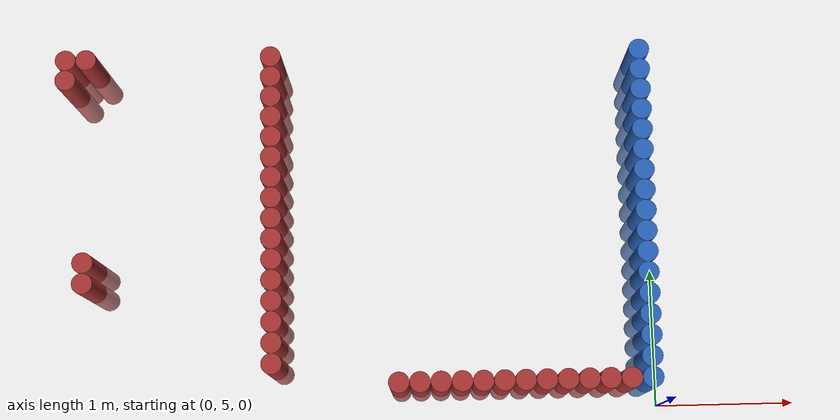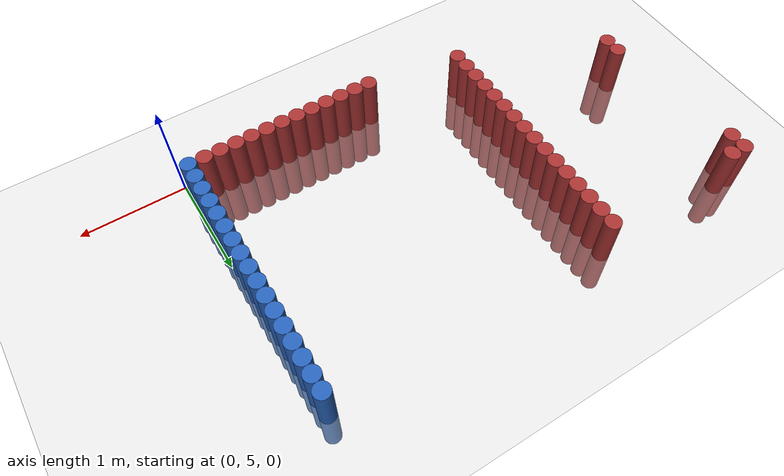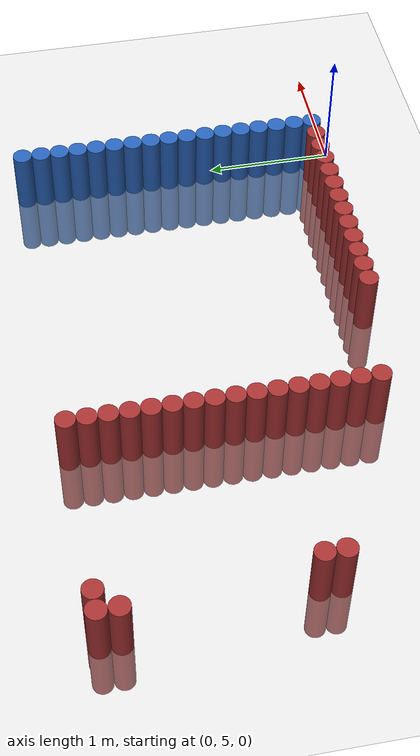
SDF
<sdf version="1.6">
 <world name="default">
  <model name="ground_plane">
   <static>1</static>
   <link name="link">
    <collision name="collision">
     <geometry><plane><normal>0 0 1</normal><size>100 100</size></plane></geometry>
     <surface><friction><ode><mu>100</mu><mu2>50</mu2></ode></friction></surface>
    </collision>
    <visual name="visual">
     <cast_shadows>0</cast_shadows>
     <geometry><plane><normal>0 0 1</normal><size>100 100</size></plane></geometry>
     <material>
      <script><uri>file://media/materials/scripts/gazebo.material</uri><name>Gazebo/Grey</name></script>
     </material>
    </visual>
   </link>
  </model>
  <model name="unit_cylinder_247">
   <static>1</static>
   <pose>-4.275000 7.425000 0.000000 0.000000 0.000000 0.000000</pose>
   <link name="link">
    <inertial>
     <mass>1</mass>
     <inertia><ixx>0.145833</ixx><ixy>0</ixy><ixz>0</ixz><iyy>0.145833</iyy><iyz>0</iyz><izz>0.125</izz></inertia>
    </inertial>
    <collision name="collision">
     <geometry><cylinder><radius>0.075000</radius><length>1</length></cylinder></geometry>
    </collision>
    <visual name="visual">
     <geometry><cylinder><radius>0.075000</radius><length>1</length></cylinder></geometry>
     <material>
      <ambient>0.648000 0.192000 0.192000 1</ambient>
      <diffuse>0.648000 0.192000 0.192000 1</diffuse>
     </material>
     <material>
      <script><name>Gazebo/Grey</name><uri>file://media/materials/scripts/gazebo.material</uri></script>
     </material>
    </visual>
   </link>
  </model>
  <model name="unit_cylinder_248">
   <static>1</static>
   <pose>-4.275000 7.575000 0.000000 0.000000 0.000000 0.000000</pose>
   <link name="link">
    <inertial>
     <mass>1</mass>
     <inertia><ixx>0.145833</ixx><ixy>0</ixy><ixz>0</ixz><iyy>0.145833</iyy><iyz>0</iyz><izz>0.125</izz></inertia>
    </inertial>
    <collision name="collision">
     <geometry><cylinder><radius>0.075000</radius><length>1</length></cylinder></geometry>
    </collision>
    <visual name="visual">
     <geometry><cylinder><radius>0.075000</radius><length>1</length></cylinder></geometry>
     <material>
      <ambient>0.648000 0.192000 0.192000 1</ambient>
      <diffuse>0.648000 0.192000 0.192000 1</diffuse>
     </material>
     <material>
      <script><name>Gazebo/Grey</name><uri>file://media/materials/scripts/gazebo.material</uri></script>
     </material>
    </visual>
   </link>
  </model>
  <model name="unit_cylinder_250">
   <static>1</static>
   <pose>-4.125000 5.925000 0.000000 0.000000 0.000000 0.000000</pose>
   <link name="link">
    <inertial>
     <mass>1</mass>
     <inertia><ixx>0.145833</ixx><ixy>0</ixy><ixz>0</ixz><iyy>0.145833</iyy><iyz>0</iyz><izz>0.125</izz></inertia>
    </inertial>
    <collision name="collision">
     <geometry><cylinder><radius>0.075000</radius><length>1</length></cylinder></geometry>
    </collision>
    <visual name="visual">
     <geometry><cylinder><radius>0.075000</radius><length>1</length></cylinder></geometry>
     <material>
      <ambient>0.648000 0.192000 0.192000 1</ambient>
      <diffuse>0.648000 0.192000 0.192000 1</diffuse>
     </material>
     <material>
      <script><name>Gazebo/Grey</name><uri>file://media/materials/scripts/gazebo.material</uri></script>
     </material>
    </visual>
   </link>
  </model>
  <model name="unit_cylinder_251">
   <static>1</static>
   <pose>-4.125000 6.075000 0.000000 0.000000 0.000000 0.000000</pose>
   <link name="link">
    <inertial>
     <mass>1</mass>
     <inertia><ixx>0.145833</ixx><ixy>0</ixy><ixz>0</ixz><iyy>0.145833</iyy><iyz>0</iyz><izz>0.125</izz></inertia>
    </inertial>
    <collision name="collision">
     <geometry><cylinder><radius>0.075000</radius><length>1</length></cylinder></geometry>
    </collision>
    <visual name="visual">
     <geometry><cylinder><radius>0.075000</radius><length>1</length></cylinder></geometry>
     <material>
      <ambient>0.648000 0.192000 0.192000 1</ambient>
      <diffuse>0.648000 0.192000 0.192000 1</diffuse>
     </material>
     <material>
      <script><name>Gazebo/Grey</name><uri>file://media/materials/scripts/gazebo.material</uri></script>
     </material>
    </visual>
   </link>
  </model>
  <model name="unit_cylinder_252">
   <static>1</static>
   <pose>-4.125000 7.575000 0.000000 0.000000 0.000000 0.000000</pose>
   <link name="link">
    <inertial>
     <mass>1</mass>
     <inertia><ixx>0.145833</ixx><ixy>0</ixy><ixz>0</ixz><iyy>0.145833</iyy><iyz>0</iyz><izz>0.125</izz></inertia>
    </inertial>
    <collision name="collision">
     <geometry><cylinder><radius>0.075000</radius><length>1</length></cylinder></geometry>
    </collision>
    <visual name="visual">
     <geometry><cylinder><radius>0.075000</radius><length>1</length></cylinder></geometry>
     <material>
      <ambient>0.648000 0.192000 0.192000 1</ambient>
      <diffuse>0.648000 0.192000 0.192000 1</diffuse>
     </material>
     <material>
      <script><name>Gazebo/Grey</name><uri>file://media/materials/scripts/gazebo.material</uri></script>
     </material>
    </visual>
   </link>
  </model>
  <model name="unit_cylinder_263">
   <static>1</static>
   <pose>-2.775000 5.325000 0.000000 0.000000 0.000000 0.000000</pose>
   <link name="link">
    <inertial>
     <mass>1</mass>
     <inertia><ixx>0.145833</ixx><ixy>0</ixy><ixz>0</ixz><iyy>0.145833</iyy><iyz>0</iyz><izz>0.125</izz></inertia>
    </inertial>
    <collision name="collision">
     <geometry><cylinder><radius>0.075000</radius><length>1</length></cylinder></geometry>
    </collision>
    <visual name="visual">
     <geometry><cylinder><radius>0.075000</radius><length>1</length></cylinder></geometry>
     <material>
      <ambient>0.648000 0.192000 0.192000 1</ambient>
      <diffuse>0.648000 0.192000 0.192000 1</diffuse>
     </material>
     <material>
      <script><name>Gazebo/Grey</name><uri>file://media/materials/scripts/gazebo.material</uri></script>
     </material>
    </visual>
   </link>
  </model>
  <model name="unit_cylinder_264">
   <static>1</static>
   <pose>-2.775000 5.475000 0.000000 0.000000 0.000000 0.000000</pose>
   <link name="link">
    <inertial>
     <mass>1</mass>
     <inertia><ixx>0.145833</ixx><ixy>0</ixy><ixz>0</ixz><iyy>0.145833</iyy><iyz>0</iyz><izz>0.125</izz></inertia>
    </inertial>
    <collision name="collision">
     <geometry><cylinder><radius>0.075000</radius><length>1</length></cylinder></geometry>
    </collision>
    <visual name="visual">
     <geometry><cylinder><radius>0.075000</radius><length>1</length></cylinder></geometry>
     <material>
      <ambient>0.648000 0.192000 0.192000 1</ambient>
      <diffuse>0.648000 0.192000 0.192000 1</diffuse>
     </material>
     <material>
      <script><name>Gazebo/Grey</name><uri>file://media/materials/scripts/gazebo.material</uri></script>
     </material>
    </visual>
   </link>
  </model>
  <model name="unit_cylinder_265">
   <static>1</static>
   <pose>-2.775000 5.625000 0.000000 0.000000 0.000000 0.000000</pose>
   <link name="link">
    <inertial>
     <mass>1</mass>
     <inertia><ixx>0.145833</ixx><ixy>0</ixy><ixz>0</ixz><iyy>0.145833</iyy><iyz>0</iyz><izz>0.125</izz></inertia>
    </inertial>
    <collision name="collision">
     <geometry><cylinder><radius>0.075000</radius><length>1</length></cylinder></geometry>
    </collision>
    <visual name="visual">
     <geometry><cylinder><radius>0.075000</radius><length>1</length></cylinder></geometry>
     <material>
      <ambient>0.648000 0.192000 0.192000 1</ambient>
      <diffuse>0.648000 0.192000 0.192000 1</diffuse>
     </material>
     <material>
      <script><name>Gazebo/Grey</name><uri>file://media/materials/scripts/gazebo.material</uri></script>
     </material>
    </visual>
   </link>
  </model>
  <model name="unit_cylinder_266">
   <static>1</static>
   <pose>-2.775000 5.775000 0.000000 0.000000 0.000000 0.000000</pose>
   <link name="link">
    <inertial>
     <mass>1</mass>
     <inertia><ixx>0.145833</ixx><ixy>0</ixy><ixz>0</ixz><iyy>0.145833</iyy><iyz>0</iyz><izz>0.125</izz></inertia>
    </inertial>
    <collision name="collision">
     <geometry><cylinder><radius>0.075000</radius><length>1</length></cylinder></geometry>
    </collision>
    <visual name="visual">
     <geometry><cylinder><radius>0.075000</radius><length>1</length></cylinder></geometry>
     <material>
      <ambient>0.648000 0.192000 0.192000 1</ambient>
      <diffuse>0.648000 0.192000 0.192000 1</diffuse>
     </material>
     <material>
      <script><name>Gazebo/Grey</name><uri>file://media/materials/scripts/gazebo.material</uri></script>
     </material>
    </visual>
   </link>
  </model>
  <model name="unit_cylinder_267">
   <static>1</static>
   <pose>-2.775000 5.925000 0.000000 0.000000 0.000000 0.000000</pose>
   <link name="link">
    <inertial>
     <mass>1</mass>
     <inertia><ixx>0.145833</ixx><ixy>0</ixy><ixz>0</ixz><iyy>0.145833</iyy><iyz>0</iyz><izz>0.125</izz></inertia>
    </inertial>
    <collision name="collision">
     <geometry><cylinder><radius>0.075000</radius><length>1</length></cylinder></geometry>
    </collision>
    <visual name="visual">
     <geometry><cylinder><radius>0.075000</radius><length>1</length></cylinder></geometry>
     <material>
      <ambient>0.648000 0.192000 0.192000 1</ambient>
      <diffuse>0.648000 0.192000 0.192000 1</diffuse>
     </material>
     <material>
      <script><name>Gazebo/Grey</name><uri>file://media/materials/scripts/gazebo.material</uri></script>
     </material>
    </visual>
   </link>
  </model>
  <model name="unit_cylinder_268">
   <static>1</static>
   <pose>-2.775000 6.075000 0.000000 0.000000 0.000000 0.000000</pose>
   <link name="link">
    <inertial>
     <mass>1</mass>
     <inertia><ixx>0.145833</ixx><ixy>0</ixy><ixz>0</ixz><iyy>0.145833</iyy><iyz>0</iyz><izz>0.125</izz></inertia>
    </inertial>
    <collision name="collision">
     <geometry><cylinder><radius>0.075000</radius><length>1</length></cylinder></geometry>
    </collision>
    <visual name="visual">
     <geometry><cylinder><radius>0.075000</radius><length>1</length></cylinder></geometry>
     <material>
      <ambient>0.648000 0.192000 0.192000 1</ambient>
      <diffuse>0.648000 0.192000 0.192000 1</diffuse>
     </material>
     <material>
      <script><name>Gazebo/Grey</name><uri>file://media/materials/scripts/gazebo.material</uri></script>
     </material>
    </visual>
   </link>
  </model>
  <model name="unit_cylinder_269">
   <static>1</static>
   <pose>-2.775000 6.225000 0.000000 0.000000 0.000000 0.000000</pose>
   <link name="link">
    <inertial>
     <mass>1</mass>
     <inertia><ixx>0.145833</ixx><ixy>0</ixy><ixz>0</ixz><iyy>0.145833</iyy><iyz>0</iyz><izz>0.125</izz></inertia>
    </inertial>
    <collision name="collision">
     <geometry><cylinder><radius>0.075000</radius><length>1</length></cylinder></geometry>
    </collision>
    <visual name="visual">
     <geometry><cylinder><radius>0.075000</radius><length>1</length></cylinder></geometry>
     <material>
      <ambient>0.648000 0.192000 0.192000 1</ambient>
      <diffuse>0.648000 0.192000 0.192000 1</diffuse>
     </material>
     <material>
      <script><name>Gazebo/Grey</name><uri>file://media/materials/scripts/gazebo.material</uri></script>
     </material>
    </visual>
   </link>
  </model>
  <model name="unit_cylinder_270">
   <static>1</static>
   <pose>-2.775000 6.375000 0.000000 0.000000 0.000000 0.000000</pose>
   <link name="link">
    <inertial>
     <mass>1</mass>
     <inertia><ixx>0.145833</ixx><ixy>0</ixy><ixz>0</ixz><iyy>0.145833</iyy><iyz>0</iyz><izz>0.125</izz></inertia>
    </inertial>
    <collision name="collision">
     <geometry><cylinder><radius>0.075000</radius><length>1</length></cylinder></geometry>
    </collision>
    <visual name="visual">
     <geometry><cylinder><radius>0.075000</radius><length>1</length></cylinder></geometry>
     <material>
      <ambient>0.648000 0.192000 0.192000 1</ambient>
      <diffuse>0.648000 0.192000 0.192000 1</diffuse>
     </material>
     <material>
      <script><name>Gazebo/Grey</name><uri>file://media/materials/scripts/gazebo.material</uri></script>
     </material>
    </visual>
   </link>
  </model>
  <model name="unit_cylinder_271">
   <static>1</static>
   <pose>-2.775000 6.525000 0.000000 0.000000 0.000000 0.000000</pose>
   <link name="link">
    <inertial>
     <mass>1</mass>
     <inertia><ixx>0.145833</ixx><ixy>0</ixy><ixz>0</ixz><iyy>0.145833</iyy><iyz>0</iyz><izz>0.125</izz></inertia>
    </inertial>
    <collision name="collision">
     <geometry><cylinder><radius>0.075000</radius><length>1</length></cylinder></geometry>
    </collision>
    <visual name="visual">
     <geometry><cylinder><radius>0.075000</radius><length>1</length></cylinder></geometry>
     <material>
      <ambient>0.648000 0.192000 0.192000 1</ambient>
      <diffuse>0.648000 0.192000 0.192000 1</diffuse>
     </material>
     <material>
      <script><name>Gazebo/Grey</name><uri>file://media/materials/scripts/gazebo.material</uri></script>
     </material>
    </visual>
   </link>
  </model>
  <model name="unit_cylinder_272">
   <static>1</static>
   <pose>-2.775000 6.675000 0.000000 0.000000 0.000000 0.000000</pose>
   <link name="link">
    <inertial>
     <mass>1</mass>
     <inertia><ixx>0.145833</ixx><ixy>0</ixy><ixz>0</ixz><iyy>0.145833</iyy><iyz>0</iyz><izz>0.125</izz></inertia>
    </inertial>
    <collision name="collision">
     <geometry><cylinder><radius>0.075000</radius><length>1</length></cylinder></geometry>
    </collision>
    <visual name="visual">
     <geometry><cylinder><radius>0.075000</radius><length>1</length></cylinder></geometry>
     <material>
      <ambient>0.648000 0.192000 0.192000 1</ambient>
      <diffuse>0.648000 0.192000 0.192000 1</diffuse>
     </material>
     <material>
      <script><name>Gazebo/Grey</name><uri>file://media/materials/scripts/gazebo.material</uri></script>
     </material>
    </visual>
   </link>
  </model>
  <model name="unit_cylinder_273">
   <static>1</static>
   <pose>-2.775000 6.825000 0.000000 0.000000 0.000000 0.000000</pose>
   <link name="link">
    <inertial>
     <mass>1</mass>
     <inertia><ixx>0.145833</ixx><ixy>0</ixy><ixz>0</ixz><iyy>0.145833</iyy><iyz>0</iyz><izz>0.125</izz></inertia>
    </inertial>
    <collision name="collision">
     <geometry><cylinder><radius>0.075000</radius><length>1</length></cylinder></geometry>
    </collision>
    <visual name="visual">
     <geometry><cylinder><radius>0.075000</radius><length>1</length></cylinder></geometry>
     <material>
      <ambient>0.648000 0.192000 0.192000 1</ambient>
      <diffuse>0.648000 0.192000 0.192000 1</diffuse>
     </material>
     <material>
      <script><name>Gazebo/Grey</name><uri>file://media/materials/scripts/gazebo.material</uri></script>
     </material>
    </visual>
   </link>
  </model>
  <model name="unit_cylinder_274">
   <static>1</static>
   <pose>-2.775000 6.975000 0.000000 0.000000 0.000000 0.000000</pose>
   <link name="link">
    <inertial>
     <mass>1</mass>
     <inertia><ixx>0.145833</ixx><ixy>0</ixy><ixz>0</ixz><iyy>0.145833</iyy><iyz>0</iyz><izz>0.125</izz></inertia>
    </inertial>
    <collision name="collision">
     <geometry><cylinder><radius>0.075000</radius><length>1</length></cylinder></geometry>
    </collision>
    <visual name="visual">
     <geometry><cylinder><radius>0.075000</radius><length>1</length></cylinder></geometry>
     <material>
      <ambient>0.648000 0.192000 0.192000 1</ambient>
      <diffuse>0.648000 0.192000 0.192000 1</diffuse>
     </material>
     <material>
      <script><name>Gazebo/Grey</name><uri>file://media/materials/scripts/gazebo.material</uri></script>
     </material>
    </visual>
   </link>
  </model>
  <model name="unit_cylinder_275">
   <static>1</static>
   <pose>-2.775000 7.125000 0.000000 0.000000 0.000000 0.000000</pose>
   <link name="link">
    <inertial>
     <mass>1</mass>
     <inertia><ixx>0.145833</ixx><ixy>0</ixy><ixz>0</ixz><iyy>0.145833</iyy><iyz>0</iyz><izz>0.125</izz></inertia>
    </inertial>
    <collision name="collision">
     <geometry><cylinder><radius>0.075000</radius><length>1</length></cylinder></geometry>
    </collision>
    <visual name="visual">
     <geometry><cylinder><radius>0.075000</radius><length>1</length></cylinder></geometry>
     <material>
      <ambient>0.648000 0.192000 0.192000 1</ambient>
      <diffuse>0.648000 0.192000 0.192000 1</diffuse>
     </material>
     <material>
      <script><name>Gazebo/Grey</name><uri>file://media/materials/scripts/gazebo.material</uri></script>
     </material>
    </visual>
   </link>
  </model>
  <model name="unit_cylinder_276">
   <static>1</static>
   <pose>-2.775000 7.275000 0.000000 0.000000 0.000000 0.000000</pose>
   <link name="link">
    <inertial>
     <mass>1</mass>
     <inertia><ixx>0.145833</ixx><ixy>0</ixy><ixz>0</ixz><iyy>0.145833</iyy><iyz>0</iyz><izz>0.125</izz></inertia>
    </inertial>
    <collision name="collision">
     <geometry><cylinder><radius>0.075000</radius><length>1</length></cylinder></geometry>
    </collision>
    <visual name="visual">
     <geometry><cylinder><radius>0.075000</radius><length>1</length></cylinder></geometry>
     <material>
      <ambient>0.648000 0.192000 0.192000 1</ambient>
      <diffuse>0.648000 0.192000 0.192000 1</diffuse>
     </material>
     <material>
      <script><name>Gazebo/Grey</name><uri>file://media/materials/scripts/gazebo.material</uri></script>
     </material>
    </visual>
   </link>
  </model>
  <model name="unit_cylinder_277">
   <static>1</static>
   <pose>-2.775000 7.425000 0.000000 0.000000 0.000000 0.000000</pose>
   <link name="link">
    <inertial>
     <mass>1</mass>
     <inertia><ixx>0.145833</ixx><ixy>0</ixy><ixz>0</ixz><iyy>0.145833</iyy><iyz>0</iyz><izz>0.125</izz></inertia>
    </inertial>
    <collision name="collision">
     <geometry><cylinder><radius>0.075000</radius><length>1</length></cylinder></geometry>
    </collision>
    <visual name="visual">
     <geometry><cylinder><radius>0.075000</radius><length>1</length></cylinder></geometry>
     <material>
      <ambient>0.648000 0.192000 0.192000 1</ambient>
      <diffuse>0.648000 0.192000 0.192000 1</diffuse>
     </material>
     <material>
      <script><name>Gazebo/Grey</name><uri>file://media/materials/scripts/gazebo.material</uri></script>
     </material>
    </visual>
   </link>
  </model>
  <model name="unit_cylinder_278">
   <static>1</static>
   <pose>-2.775000 7.575000 0.000000 0.000000 0.000000 0.000000</pose>
   <link name="link">
    <inertial>
     <mass>1</mass>
     <inertia><ixx>0.145833</ixx><ixy>0</ixy><ixz>0</ixz><iyy>0.145833</iyy><iyz>0</iyz><izz>0.125</izz></inertia>
    </inertial>
    <collision name="collision">
     <geometry><cylinder><radius>0.075000</radius><length>1</length></cylinder></geometry>
    </collision>
    <visual name="visual">
     <geometry><cylinder><radius>0.075000</radius><length>1</length></cylinder></geometry>
     <material>
      <ambient>0.648000 0.192000 0.192000 1</ambient>
      <diffuse>0.648000 0.192000 0.192000 1</diffuse>
     </material>
     <material>
      <script><name>Gazebo/Grey</name><uri>file://media/materials/scripts/gazebo.material</uri></script>
     </material>
    </visual>
   </link>
  </model>
  <model name="unit_cylinder_300">
   <static>1</static>
   <pose>-1.875000 5.175000 0.000000 0.000000 0.000000 0.000000</pose>
   <link name="link">
    <inertial>
     <mass>1</mass>
     <inertia><ixx>0.145833</ixx><ixy>0</ixy><ixz>0</ixz><iyy>0.145833</iyy><iyz>0</iyz><izz>0.125</izz></inertia>
    </inertial>
    <collision name="collision">
     <geometry><cylinder><radius>0.075000</radius><length>1</length></cylinder></geometry>
    </collision>
    <visual name="visual">
     <geometry><cylinder><radius>0.075000</radius><length>1</length></cylinder></geometry>
     <material>
      <ambient>0.648000 0.192000 0.192000 1</ambient>
      <diffuse>0.648000 0.192000 0.192000 1</diffuse>
     </material>
     <material>
      <script><name>Gazebo/Grey</name><uri>file://media/materials/scripts/gazebo.material</uri></script>
     </material>
    </visual>
   </link>
  </model>
  <model name="unit_cylinder_302">
   <static>1</static>
   <pose>-1.725000 5.175000 0.000000 0.000000 0.000000 0.000000</pose>
   <link name="link">
    <inertial>
     <mass>1</mass>
     <inertia><ixx>0.145833</ixx><ixy>0</ixy><ixz>0</ixz><iyy>0.145833</iyy><iyz>0</iyz><izz>0.125</izz></inertia>
    </inertial>
    <collision name="collision">
     <geometry><cylinder><radius>0.075000</radius><length>1</length></cylinder></geometry>
    </collision>
    <visual name="visual">
     <geometry><cylinder><radius>0.075000</radius><length>1</length></cylinder></geometry>
     <material>
      <ambient>0.648000 0.192000 0.192000 1</ambient>
      <diffuse>0.648000 0.192000 0.192000 1</diffuse>
     </material>
     <material>
      <script><name>Gazebo/Grey</name><uri>file://media/materials/scripts/gazebo.material</uri></script>
     </material>
    </visual>
   </link>
  </model>
  <model name="unit_cylinder_304">
   <static>1</static>
   <pose>-1.575000 5.175000 0.000000 0.000000 0.000000 0.000000</pose>
   <link name="link">
    <inertial>
     <mass>1</mass>
     <inertia><ixx>0.145833</ixx><ixy>0</ixy><ixz>0</ixz><iyy>0.145833</iyy><iyz>0</iyz><izz>0.125</izz></inertia>
    </inertial>
    <collision name="collision">
     <geometry><cylinder><radius>0.075000</radius><length>1</length></cylinder></geometry>
    </collision>
    <visual name="visual">
     <geometry><cylinder><radius>0.075000</radius><length>1</length></cylinder></geometry>
     <material>
      <ambient>0.648000 0.192000 0.192000 1</ambient>
      <diffuse>0.648000 0.192000 0.192000 1</diffuse>
     </material>
     <material>
      <script><name>Gazebo/Grey</name><uri>file://media/materials/scripts/gazebo.material</uri></script>
     </material>
    </visual>
   </link>
  </model>
  <model name="unit_cylinder_306">
   <static>1</static>
   <pose>-1.425000 5.175000 0.000000 0.000000 0.000000 0.000000</pose>
   <link name="link">
    <inertial>
     <mass>1</mass>
     <inertia><ixx>0.145833</ixx><ixy>0</ixy><ixz>0</ixz><iyy>0.145833</iyy><iyz>0</iyz><izz>0.125</izz></inertia>
    </inertial>
    <collision name="collision">
     <geometry><cylinder><radius>0.075000</radius><length>1</length></cylinder></geometry>
    </collision>
    <visual name="visual">
     <geometry><cylinder><radius>0.075000</radius><length>1</length></cylinder></geometry>
     <material>
      <ambient>0.648000 0.192000 0.192000 1</ambient>
      <diffuse>0.648000 0.192000 0.192000 1</diffuse>
     </material>
     <material>
      <script><name>Gazebo/Grey</name><uri>file://media/materials/scripts/gazebo.material</uri></script>
     </material>
    </visual>
   </link>
  </model>
  <model name="unit_cylinder_308">
   <static>1</static>
   <pose>-1.275000 5.175000 0.000000 0.000000 0.000000 0.000000</pose>
   <link name="link">
    <inertial>
     <mass>1</mass>
     <inertia><ixx>0.145833</ixx><ixy>0</ixy><ixz>0</ixz><iyy>0.145833</iyy><iyz>0</iyz><izz>0.125</izz></inertia>
    </inertial>
    <collision name="collision">
     <geometry><cylinder><radius>0.075000</radius><length>1</length></cylinder></geometry>
    </collision>
    <visual name="visual">
     <geometry><cylinder><radius>0.075000</radius><length>1</length></cylinder></geometry>
     <material>
      <ambient>0.648000 0.192000 0.192000 1</ambient>
      <diffuse>0.648000 0.192000 0.192000 1</diffuse>
     </material>
     <material>
      <script><name>Gazebo/Grey</name><uri>file://media/materials/scripts/gazebo.material</uri></script>
     </material>
    </visual>
   </link>
  </model>
  <model name="unit_cylinder_310">
   <static>1</static>
   <pose>-1.125000 5.175000 0.000000 0.000000 0.000000 0.000000</pose>
   <link name="link">
    <inertial>
     <mass>1</mass>
     <inertia><ixx>0.145833</ixx><ixy>0</ixy><ixz>0</ixz><iyy>0.145833</iyy><iyz>0</iyz><izz>0.125</izz></inertia>
    </inertial>
    <collision name="collision">
     <geometry><cylinder><radius>0.075000</radius><length>1</length></cylinder></geometry>
    </collision>
    <visual name="visual">
     <geometry><cylinder><radius>0.075000</radius><length>1</length></cylinder></geometry>
     <material>
      <ambient>0.648000 0.192000 0.192000 1</ambient>
      <diffuse>0.648000 0.192000 0.192000 1</diffuse>
     </material>
     <material>
      <script><name>Gazebo/Grey</name><uri>file://media/materials/scripts/gazebo.material</uri></script>
     </material>
    </visual>
   </link>
  </model>
  <model name="unit_cylinder_312">
   <static>1</static>
   <pose>-0.975000 5.175000 0.000000 0.000000 0.000000 0.000000</pose>
   <link name="link">
    <inertial>
     <mass>1</mass>
     <inertia><ixx>0.145833</ixx><ixy>0</ixy><ixz>0</ixz><iyy>0.145833</iyy><iyz>0</iyz><izz>0.125</izz></inertia>
    </inertial>
    <collision name="collision">
     <geometry><cylinder><radius>0.075000</radius><length>1</length></cylinder></geometry>
    </collision>
    <visual name="visual">
     <geometry><cylinder><radius>0.075000</radius><length>1</length></cylinder></geometry>
     <material>
      <ambient>0.648000 0.192000 0.192000 1</ambient>
      <diffuse>0.648000 0.192000 0.192000 1</diffuse>
     </material>
     <material>
      <script><name>Gazebo/Grey</name><uri>file://media/materials/scripts/gazebo.material</uri></script>
     </material>
    </visual>
   </link>
  </model>
  <model name="unit_cylinder_314">
   <static>1</static>
   <pose>-0.825000 5.175000 0.000000 0.000000 0.000000 0.000000</pose>
   <link name="link">
    <inertial>
     <mass>1</mass>
     <inertia><ixx>0.145833</ixx><ixy>0</ixy><ixz>0</ixz><iyy>0.145833</iyy><iyz>0</iyz><izz>0.125</izz></inertia>
    </inertial>
    <collision name="collision">
     <geometry><cylinder><radius>0.075000</radius><length>1</length></cylinder></geometry>
    </collision>
    <visual name="visual">
     <geometry><cylinder><radius>0.075000</radius><length>1</length></cylinder></geometry>
     <material>
      <ambient>0.648000 0.192000 0.192000 1</ambient>
      <diffuse>0.648000 0.192000 0.192000 1</diffuse>
     </material>
     <material>
      <script><name>Gazebo/Grey</name><uri>file://media/materials/scripts/gazebo.material</uri></script>
     </material>
    </visual>
   </link>
  </model>
  <model name="unit_cylinder_316">
   <static>1</static>
   <pose>-0.675000 5.175000 0.000000 0.000000 0.000000 0.000000</pose>
   <link name="link">
    <inertial>
     <mass>1</mass>
     <inertia><ixx>0.145833</ixx><ixy>0</ixy><ixz>0</ixz><iyy>0.145833</iyy><iyz>0</iyz><izz>0.125</izz></inertia>
    </inertial>
    <collision name="collision">
     <geometry><cylinder><radius>0.075000</radius><length>1</length></cylinder></geometry>
    </collision>
    <visual name="visual">
     <geometry><cylinder><radius>0.075000</radius><length>1</length></cylinder></geometry>
     <material>
      <ambient>0.648000 0.192000 0.192000 1</ambient>
      <diffuse>0.648000 0.192000 0.192000 1</diffuse>
     </material>
     <material>
      <script><name>Gazebo/Grey</name><uri>file://media/materials/scripts/gazebo.material</uri></script>
     </material>
    </visual>
   </link>
  </model>
  <model name="unit_cylinder_318">
   <static>1</static>
   <pose>-0.525000 5.175000 0.000000 0.000000 0.000000 0.000000</pose>
   <link name="link">
    <inertial>
     <mass>1</mass>
     <inertia><ixx>0.145833</ixx><ixy>0</ixy><ixz>0</ixz><iyy>0.145833</iyy><iyz>0</iyz><izz>0.125</izz></inertia>
    </inertial>
    <collision name="collision">
     <geometry><cylinder><radius>0.075000</radius><length>1</length></cylinder></geometry>
    </collision>
    <visual name="visual">
     <geometry><cylinder><radius>0.075000</radius><length>1</length></cylinder></geometry>
     <material>
      <ambient>0.648000 0.192000 0.192000 1</ambient>
      <diffuse>0.648000 0.192000 0.192000 1</diffuse>
     </material>
     <material>
      <script><name>Gazebo/Grey</name><uri>file://media/materials/scripts/gazebo.material</uri></script>
     </material>
    </visual>
   </link>
  </model>
  <model name="unit_cylinder_320">
   <static>1</static>
   <pose>-0.375000 5.175000 0.000000 0.000000 0.000000 0.000000</pose>
   <link name="link">
    <inertial>
     <mass>1</mass>
     <inertia><ixx>0.145833</ixx><ixy>0</ixy><ixz>0</ixz><iyy>0.145833</iyy><iyz>0</iyz><izz>0.125</izz></inertia>
    </inertial>
    <collision name="collision">
     <geometry><cylinder><radius>0.075000</radius><length>1</length></cylinder></geometry>
    </collision>
    <visual name="visual">
     <geometry><cylinder><radius>0.075000</radius><length>1</length></cylinder></geometry>
     <material>
      <ambient>0.648000 0.192000 0.192000 1</ambient>
      <diffuse>0.648000 0.192000 0.192000 1</diffuse>
     </material>
     <material>
      <script><name>Gazebo/Grey</name><uri>file://media/materials/scripts/gazebo.material</uri></script>
     </material>
    </visual>
   </link>
  </model>
  <model name="unit_cylinder_322">
   <static>1</static>
   <pose>-0.225000 5.175000 0.000000 0.000000 0.000000 0.000000</pose>
   <link name="link">
    <inertial>
     <mass>1</mass>
     <inertia><ixx>0.145833</ixx><ixy>0</ixy><ixz>0</ixz><iyy>0.145833</iyy><iyz>0</iyz><izz>0.125</izz></inertia>
    </inertial>
    <collision name="collision">
     <geometry><cylinder><radius>0.075000</radius><length>1</length></cylinder></geometry>
    </collision>
    <visual name="visual">
     <geometry><cylinder><radius>0.075000</radius><length>1</length></cylinder></geometry>
     <material>
      <ambient>0.648000 0.192000 0.192000 1</ambient>
      <diffuse>0.648000 0.192000 0.192000 1</diffuse>
     </material>
     <material>
      <script><name>Gazebo/Grey</name><uri>file://media/materials/scripts/gazebo.material</uri></script>
     </material>
    </visual>
   </link>
  </model>
  <model name="unit_cylinder_324">
   <static>1</static>
   <pose>-0.075000 5.175000 0.000000 0.000000 0.000000 0.000000</pose>
   <link name="link">
    <inertial>
     <mass>1</mass>
     <inertia><ixx>0.145833</ixx><ixy>0</ixy><ixz>0</ixz><iyy>0.145833</iyy><iyz>0</iyz><izz>0.125</izz></inertia>
    </inertial>
    <collision name="collision">
     <geometry><cylinder><radius>0.075000</radius><length>1</length></cylinder></geometry>
    </collision>
    <visual name="visual">
     <geometry><cylinder><radius>0.075000</radius><length>1</length></cylinder></geometry>
     <material>
      <ambient>0.152000 0.379000 0.720000 1</ambient>
      <diffuse>0.152000 0.379000 0.720000 1</diffuse>
     </material>
     <material>
      <script><name>Gazebo/Grey</name><uri>file://media/materials/scripts/gazebo.material</uri></script>
     </material>
    </visual>
   </link>
  </model>
  <model name="unit_cylinder_325">
   <static>1</static>
   <pose>-0.075000 5.325000 0.000000 0.000000 0.000000 0.000000</pose>
   <link name="link">
    <inertial>
     <mass>1</mass>
     <inertia><ixx>0.145833</ixx><ixy>0</ixy><ixz>0</ixz><iyy>0.145833</iyy><iyz>0</iyz><izz>0.125</izz></inertia>
    </inertial>
    <collision name="collision">
     <geometry><cylinder><radius>0.075000</radius><length>1</length></cylinder></geometry>
    </collision>
    <visual name="visual">
     <geometry><cylinder><radius>0.075000</radius><length>1</length></cylinder></geometry>
     <material>
      <ambient>0.152000 0.379000 0.720000 1</ambient>
      <diffuse>0.152000 0.379000 0.720000 1</diffuse>
     </material>
     <material>
      <script><name>Gazebo/Grey</name><uri>file://media/materials/scripts/gazebo.material</uri></script>
     </material>
    </visual>
   </link>
  </model>
  <model name="unit_cylinder_326">
   <static>1</static>
   <pose>-0.075000 5.475000 0.000000 0.000000 0.000000 0.000000</pose>
   <link name="link">
    <inertial>
     <mass>1</mass>
     <inertia><ixx>0.145833</ixx><ixy>0</ixy><ixz>0</ixz><iyy>0.145833</iyy><iyz>0</iyz><izz>0.125</izz></inertia>
    </inertial>
    <collision name="collision">
     <geometry><cylinder><radius>0.075000</radius><length>1</length></cylinder></geometry>
    </collision>
    <visual name="visual">
     <geometry><cylinder><radius>0.075000</radius><length>1</length></cylinder></geometry>
     <material>
      <ambient>0.152000 0.379000 0.720000 1</ambient>
      <diffuse>0.152000 0.379000 0.720000 1</diffuse>
     </material>
     <material>
      <script><name>Gazebo/Grey</name><uri>file://media/materials/scripts/gazebo.material</uri></script>
     </material>
    </visual>
   </link>
  </model>
  <model name="unit_cylinder_327">
   <static>1</static>
   <pose>-0.075000 5.625000 0.000000 0.000000 0.000000 0.000000</pose>
   <link name="link">
    <inertial>
     <mass>1</mass>
     <inertia><ixx>0.145833</ixx><ixy>0</ixy><ixz>0</ixz><iyy>0.145833</iyy><iyz>0</iyz><izz>0.125</izz></inertia>
    </inertial>
    <collision name="collision">
     <geometry><cylinder><radius>0.075000</radius><length>1</length></cylinder></geometry>
    </collision>
    <visual name="visual">
     <geometry><cylinder><radius>0.075000</radius><length>1</length></cylinder></geometry>
     <material>
      <ambient>0.152000 0.379000 0.720000 1</ambient>
      <diffuse>0.152000 0.379000 0.720000 1</diffuse>
     </material>
     <material>
      <script><name>Gazebo/Grey</name><uri>file://media/materials/scripts/gazebo.material</uri></script>
     </material>
    </visual>
   </link>
  </model>
  <model name="unit_cylinder_328">
   <static>1</static>
   <pose>-0.075000 5.775000 0.000000 0.000000 0.000000 0.000000</pose>
   <link name="link">
    <inertial>
     <mass>1</mass>
     <inertia><ixx>0.145833</ixx><ixy>0</ixy><ixz>0</ixz><iyy>0.145833</iyy><iyz>0</iyz><izz>0.125</izz></inertia>
    </inertial>
    <collision name="collision">
     <geometry><cylinder><radius>0.075000</radius><length>1</length></cylinder></geometry>
    </collision>
    <visual name="visual">
     <geometry><cylinder><radius>0.075000</radius><length>1</length></cylinder></geometry>
     <material>
      <ambient>0.152000 0.379000 0.720000 1</ambient>
      <diffuse>0.152000 0.379000 0.720000 1</diffuse>
     </material>
     <material>
      <script><name>Gazebo/Grey</name><uri>file://media/materials/scripts/gazebo.material</uri></script>
     </material>
    </visual>
   </link>
  </model>
  <model name="unit_cylinder_329">
   <static>1</static>
   <pose>-0.075000 5.925000 0.000000 0.000000 0.000000 0.000000</pose>
   <link name="link">
    <inertial>
     <mass>1</mass>
     <inertia><ixx>0.145833</ixx><ixy>0</ixy><ixz>0</ixz><iyy>0.145833</iyy><iyz>0</iyz><izz>0.125</izz></inertia>
    </inertial>
    <collision name="collision">
     <geometry><cylinder><radius>0.075000</radius><length>1</length></cylinder></geometry>
    </collision>
    <visual name="visual">
     <geometry><cylinder><radius>0.075000</radius><length>1</length></cylinder></geometry>
     <material>
      <ambient>0.152000 0.379000 0.720000 1</ambient>
      <diffuse>0.152000 0.379000 0.720000 1</diffuse>
     </material>
     <material>
      <script><name>Gazebo/Grey</name><uri>file://media/materials/scripts/gazebo.material</uri></script>
     </material>
    </visual>
   </link>
  </model>
  <model name="unit_cylinder_330">
   <static>1</static>
   <pose>-0.075000 6.075000 0.000000 0.000000 0.000000 0.000000</pose>
   <link name="link">
    <inertial>
     <mass>1</mass>
     <inertia><ixx>0.145833</ixx><ixy>0</ixy><ixz>0</ixz><iyy>0.145833</iyy><iyz>0</iyz><izz>0.125</izz></inertia>
    </inertial>
    <collision name="collision">
     <geometry><cylinder><radius>0.075000</radius><length>1</length></cylinder></geometry>
    </collision>
    <visual name="visual">
     <geometry><cylinder><radius>0.075000</radius><length>1</length></cylinder></geometry>
     <material>
      <ambient>0.152000 0.379000 0.720000 1</ambient>
      <diffuse>0.152000 0.379000 0.720000 1</diffuse>
     </material>
     <material>
      <script><name>Gazebo/Grey</name><uri>file://media/materials/scripts/gazebo.material</uri></script>
     </material>
    </visual>
   </link>
  </model>
  <model name="unit_cylinder_331">
   <static>1</static>
   <pose>-0.075000 6.225000 0.000000 0.000000 0.000000 0.000000</pose>
   <link name="link">
    <inertial>
     <mass>1</mass>
     <inertia><ixx>0.145833</ixx><ixy>0</ixy><ixz>0</ixz><iyy>0.145833</iyy><iyz>0</iyz><izz>0.125</izz></inertia>
    </inertial>
    <collision name="collision">
     <geometry><cylinder><radius>0.075000</radius><length>1</length></cylinder></geometry>
    </collision>
    <visual name="visual">
     <geometry><cylinder><radius>0.075000</radius><length>1</length></cylinder></geometry>
     <material>
      <ambient>0.152000 0.379000 0.720000 1</ambient>
      <diffuse>0.152000 0.379000 0.720000 1</diffuse>
     </material>
     <material>
      <script><name>Gazebo/Grey</name><uri>file://media/materials/scripts/gazebo.material</uri></script>
     </material>
    </visual>
   </link>
  </model>
  <model name="unit_cylinder_332">
   <static>1</static>
   <pose>-0.075000 6.375000 0.000000 0.000000 0.000000 0.000000</pose>
   <link name="link">
    <inertial>
     <mass>1</mass>
     <inertia><ixx>0.145833</ixx><ixy>0</ixy><ixz>0</ixz><iyy>0.145833</iyy><iyz>0</iyz><izz>0.125</izz></inertia>
    </inertial>
    <collision name="collision">
     <geometry><cylinder><radius>0.075000</radius><length>1</length></cylinder></geometry>
    </collision>
    <visual name="visual">
     <geometry><cylinder><radius>0.075000</radius><length>1</length></cylinder></geometry>
     <material>
      <ambient>0.152000 0.379000 0.720000 1</ambient>
      <diffuse>0.152000 0.379000 0.720000 1</diffuse>
     </material>
     <material>
      <script><name>Gazebo/Grey</name><uri>file://media/materials/scripts/gazebo.material</uri></script>
     </material>
    </visual>
   </link>
  </model>
  <model name="unit_cylinder_333">
   <static>1</static>
   <pose>-0.075000 6.525000 0.000000 0.000000 0.000000 0.000000</pose>
   <link name="link">
    <inertial>
     <mass>1</mass>
     <inertia><ixx>0.145833</ixx><ixy>0</ixy><ixz>0</ixz><iyy>0.145833</iyy><iyz>0</iyz><izz>0.125</izz></inertia>
    </inertial>
    <collision name="collision">
     <geometry><cylinder><radius>0.075000</radius><length>1</length></cylinder></geometry>
    </collision>
    <visual name="visual">
     <geometry><cylinder><radius>0.075000</radius><length>1</length></cylinder></geometry>
     <material>
      <ambient>0.152000 0.379000 0.720000 1</ambient>
      <diffuse>0.152000 0.379000 0.720000 1</diffuse>
     </material>
     <material>
      <script><name>Gazebo/Grey</name><uri>file://media/materials/scripts/gazebo.material</uri></script>
     </material>
    </visual>
   </link>
  </model>
  <model name="unit_cylinder_334">
   <static>1</static>
   <pose>-0.075000 6.675000 0.000000 0.000000 0.000000 0.000000</pose>
   <link name="link">
    <inertial>
     <mass>1</mass>
     <inertia><ixx>0.145833</ixx><ixy>0</ixy><ixz>0</ixz><iyy>0.145833</iyy><iyz>0</iyz><izz>0.125</izz></inertia>
    </inertial>
    <collision name="collision">
     <geometry><cylinder><radius>0.075000</radius><length>1</length></cylinder></geometry>
    </collision>
    <visual name="visual">
     <geometry><cylinder><radius>0.075000</radius><length>1</length></cylinder></geometry>
     <material>
      <ambient>0.152000 0.379000 0.720000 1</ambient>
      <diffuse>0.152000 0.379000 0.720000 1</diffuse>
     </material>
     <material>
      <script><name>Gazebo/Grey</name><uri>file://media/materials/scripts/gazebo.material</uri></script>
     </material>
    </visual>
   </link>
  </model>
  <model name="unit_cylinder_335">
   <static>1</static>
   <pose>-0.075000 6.825000 0.000000 0.000000 0.000000 0.000000</pose>
   <link name="link">
    <inertial>
     <mass>1</mass>
     <inertia><ixx>0.145833</ixx><ixy>0</ixy><ixz>0</ixz><iyy>0.145833</iyy><iyz>0</iyz><izz>0.125</izz></inertia>
    </inertial>
    <collision name="collision">
     <geometry><cylinder><radius>0.075000</radius><length>1</length></cylinder></geometry>
    </collision>
    <visual name="visual">
     <geometry><cylinder><radius>0.075000</radius><length>1</length></cylinder></geometry>
     <material>
      <ambient>0.152000 0.379000 0.720000 1</ambient>
      <diffuse>0.152000 0.379000 0.720000 1</diffuse>
     </material>
     <material>
      <script><name>Gazebo/Grey</name><uri>file://media/materials/scripts/gazebo.material</uri></script>
     </material>
    </visual>
   </link>
  </model>
  <model name="unit_cylinder_336">
   <static>1</static>
   <pose>-0.075000 6.975000 0.000000 0.000000 0.000000 0.000000</pose>
   <link name="link">
    <inertial>
     <mass>1</mass>
     <inertia><ixx>0.145833</ixx><ixy>0</ixy><ixz>0</ixz><iyy>0.145833</iyy><iyz>0</iyz><izz>0.125</izz></inertia>
    </inertial>
    <collision name="collision">
     <geometry><cylinder><radius>0.075000</radius><length>1</length></cylinder></geometry>
    </collision>
    <visual name="visual">
     <geometry><cylinder><radius>0.075000</radius><length>1</length></cylinder></geometry>
     <material>
      <ambient>0.152000 0.379000 0.720000 1</ambient>
      <diffuse>0.152000 0.379000 0.720000 1</diffuse>
     </material>
     <material>
      <script><name>Gazebo/Grey</name><uri>file://media/materials/scripts/gazebo.material</uri></script>
     </material>
    </visual>
   </link>
  </model>
  <model name="unit_cylinder_337">
   <static>1</static>
   <pose>-0.075000 7.125000 0.000000 0.000000 0.000000 0.000000</pose>
   <link name="link">
    <inertial>
     <mass>1</mass>
     <inertia><ixx>0.145833</ixx><ixy>0</ixy><ixz>0</ixz><iyy>0.145833</iyy><iyz>0</iyz><izz>0.125</izz></inertia>
    </inertial>
    <collision name="collision">
     <geometry><cylinder><radius>0.075000</radius><length>1</length></cylinder></geometry>
    </collision>
    <visual name="visual">
     <geometry><cylinder><radius>0.075000</radius><length>1</length></cylinder></geometry>
     <material>
      <ambient>0.152000 0.379000 0.720000 1</ambient>
      <diffuse>0.152000 0.379000 0.720000 1</diffuse>
     </material>
     <material>
      <script><name>Gazebo/Grey</name><uri>file://media/materials/scripts/gazebo.material</uri></script>
     </material>
    </visual>
   </link>
  </model>
  <model name="unit_cylinder_338">
   <static>1</static>
   <pose>-0.075000 7.275000 0.000000 0.000000 0.000000 0.000000</pose>
   <link name="link">
    <inertial>
     <mass>1</mass>
     <inertia><ixx>0.145833</ixx><ixy>0</ixy><ixz>0</ixz><iyy>0.145833</iyy><iyz>0</iyz><izz>0.125</izz></inertia>
    </inertial>
    <collision name="collision">
     <geometry><cylinder><radius>0.075000</radius><length>1</length></cylinder></geometry>
    </collision>
    <visual name="visual">
     <geometry><cylinder><radius>0.075000</radius><length>1</length></cylinder></geometry>
     <material>
      <ambient>0.152000 0.379000 0.720000 1</ambient>
      <diffuse>0.152000 0.379000 0.720000 1</diffuse>
     </material>
     <material>
      <script><name>Gazebo/Grey</name><uri>file://media/materials/scripts/gazebo.material</uri></script>
     </material>
    </visual>
   </link>
  </model>
  <model name="unit_cylinder_339">
   <static>1</static>
   <pose>-0.075000 7.425000 0.000000 0.000000 0.000000 0.000000</pose>
   <link name="link">
    <inertial>
     <mass>1</mass>
     <inertia><ixx>0.145833</ixx><ixy>0</ixy><ixz>0</ixz><iyy>0.145833</iyy><iyz>0</iyz><izz>0.125</izz></inertia>
    </inertial>
    <collision name="collision">
     <geometry><cylinder><radius>0.075000</radius><length>1</length></cylinder></geometry>
    </collision>
    <visual name="visual">
     <geometry><cylinder><radius>0.075000</radius><length>1</length></cylinder></geometry>
     <material>
      <ambient>0.152000 0.379000 0.720000 1</ambient>
      <diffuse>0.152000 0.379000 0.720000 1</diffuse>
     </material>
     <material>
      <script><name>Gazebo/Grey</name><uri>file://media/materials/scripts/gazebo.material</uri></script>
     </material>
    </visual>
   </link>
  </model>
  <model name="unit_cylinder_340">
   <static>1</static>
   <pose>-0.075000 7.575000 0.000000 0.000000 0.000000 0.000000</pose>
   <link name="link">
    <inertial>
     <mass>1</mass>
     <inertia><ixx>0.145833</ixx><ixy>0</ixy><ixz>0</ixz><iyy>0.145833</iyy><iyz>0</iyz><izz>0.125</izz></inertia>
    </inertial>
    <collision name="collision">
     <geometry><cylinder><radius>0.075000</radius><length>1</length></cylinder></geometry>
    </collision>
    <visual name="visual">
     <geometry><cylinder><radius>0.075000</radius><length>1</length></cylinder></geometry>
     <material>
      <ambient>0.152000 0.379000 0.720000 1</ambient>
      <diffuse>0.152000 0.379000 0.720000 1</diffuse>
     </material>
     <material>
      <script><name>Gazebo/Grey</name><uri>file://media/materials/scripts/gazebo.material</uri></script>
     </material>
    </visual>
   </link>
  </model>
 </world>
</sdf>
